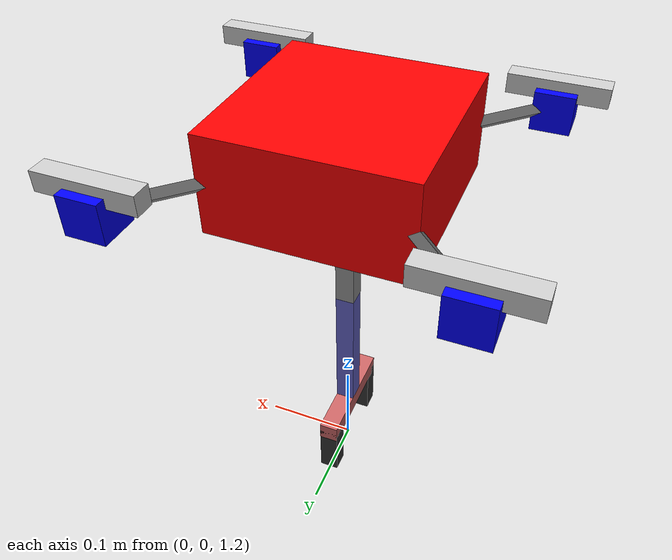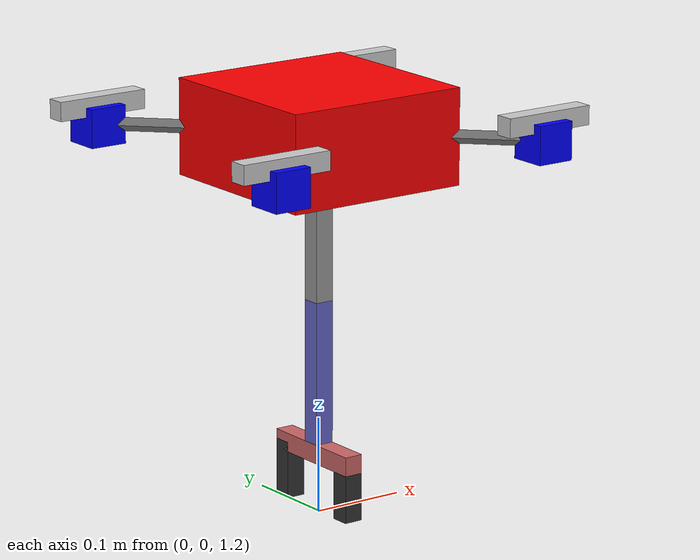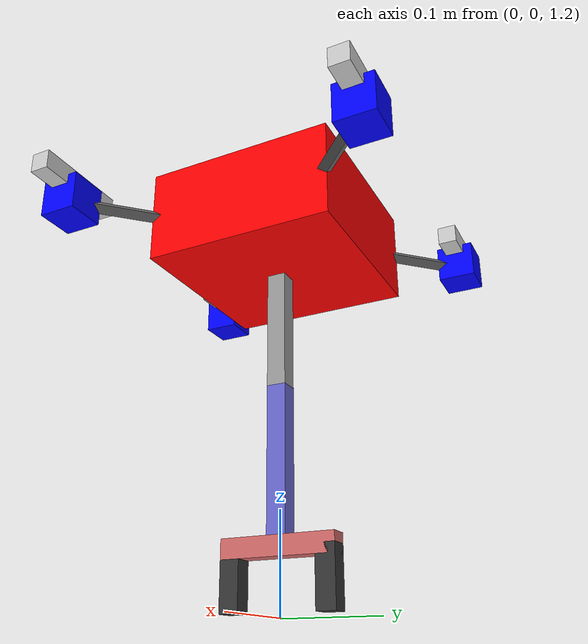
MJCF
<mujoco model="444">
<option integrator="implicit" timestep="0.005" gravity="0 0 -9.81"/>

  <default>
    <default class="444">
    </default>
  </default>

<worldbody>
  <body name="444" pos="0 0 1.6" childclass="444">
    <inertial pos="0 0 0" mass="2" diaginertia="0.01860 0.01860 0.03215"/>
    <freejoint/>
    <geom name="base" type="box" size="0.1 0.1 0.05" rgba="1 0 0 1"/>

    <!-- 无人机前视摄像头（前向固定） -->
  <camera name="front_cam"
          pos="0.05 0 -0.1"
          mode="fixed"
          resolution="640 480"
          sensorsize="0.006846 0.003853"
          focalpixel="615.3451538 615.4043579"
          orthographic="false"
          xyaxes="0 -1 0   0.5 0 0.866"/>

    <!-- X+ Y+ : 前左电机 -->
    <body name="arm_fl">
      <geom type="box" fromto="0 0 0 0.159 0.159 0" size="0.005" rgba="0.4 0.4 0.4 1"/>
      <body name="motor_fl" pos="0.159 0.159 0">
        <geom type="box" size="0.02 0.02 0.02" rgba="0 0 1 1"/>
        <body name="prop_fl">
          <joint name="rotor_fl" type="hinge" axis="0 0 -1" damping="0.2"/>
          <geom type="box" size="0.05 0.01 0.01" pos="0 0 0.02" rgba="0.8 0.8 0.8 1" contype="0" conaffinity="0"/>
        </body>
      </body>
    </body>

    <!-- X+ Y- : 前右电机 -->
    <body name="arm_fr">
      <geom type="box" fromto="0 0 0 0.159 -0.159 0" size="0.005" rgba="0.4 0.4 0.4 1"/>
      <body name="motor_fr" pos="0.159 -0.159 0">
        <geom type="box" size="0.02 0.02 0.02" rgba="0 0 1 1"/>
        <body name="prop_fr">
          <joint name="rotor_fr" type="hinge" axis="0 0 1" damping="0.2"/>
          <geom type="box" size="0.05 0.01 0.01" pos="0 0 0.02" rgba="0.8 0.8 0.8 1" contype="0" conaffinity="0"/>
        </body>
      </body>
    </body>

    <!-- X- Y+ : 后左电机 -->
    <body name="arm_bl">
      <geom type="box" fromto="0 0 0 -0.159 0.159 0" size="0.005" rgba="0.4 0.4 0.4 1"/>
      <body name="motor_bl" pos="-0.159 0.159 0">
        <geom type="box" size="0.02 0.02 0.02" rgba="0 0 1 1"/>
        <body name="prop_bl">
          <joint name="rotor_bl" type="hinge" axis="0 0 1" damping="0.2"/>
          <geom type="box" size="0.05 0.01 0.01" pos="0 0 0.02" rgba="0.8 0.8 0.8 1" contype="0" conaffinity="0"/>
        </body>
      </body>
    </body>

    <!-- X- Y- : 后右电机 -->
    <body name="arm_br">
      <geom type="box" fromto="0 0 0 -0.159 -0.159 0" size="0.005" rgba="0.4 0.4 0.4 1"/>
      <body name="motor_br" pos="-0.159 -0.159 0">
        <geom type="box" size="0.02 0.02 0.02" rgba="0 0 1 1"/>
        <body name="prop_br">
          <joint name="rotor_br" type="hinge" axis="0 0 -1" damping="0.2"/>
          <geom type="box" size="0.05 0.01 0.01" pos="0 0 0.02" rgba="0.8 0.8 0.8 1" contype="0" conaffinity="0"/>
        </body>
      </body>
    </body>
    <site name="imu" pos="0 0 0.0"/>
    <site name="motor1_site" pos="0.159 0.159 0.013"/>
    <site name="motor2_site" pos="0.159 -0.159 0.013"/>
    <site name="motor3_site" pos="-0.159 0.159 0.013"/>
    <site name="motor4_site" pos="-0.159 -0.159 0.013"/>

    <!-- ====== 二轴机械臂开始 ====== -->
    <body name="link1" pos="0 0 -0.1">
      <inertial pos="0 0 0" mass="0.15" diaginertia="0.0001431 0.0001431 0.0000050"/>
      <geom type="box" size="0.01 0.01 0.075" pos="0 0 0" rgba="0.6 0.6 0.6 1"/>
      <joint name="joint1" type="hinge" pos="0 0 0.075" axis="0 -1 0" damping="0.1"/>

      <body name="link2" pos="0 0 -0.15">
        <inertial pos="0 0 0" mass="0.15" diaginertia="0.0001431 0.0001431 0.0000050"/>
        <geom type="box" size="0.01 0.01 0.075" pos="0 0 0" rgba="0.4 0.4 0.8 1"/>
        <joint name="joint2" type="hinge" pos="0 0 0.075" axis="0 -1 0" damping="0.1"/>

        <!-- 机械臂末端摄像头（指向抓取方向），模拟 RealSense D435 参数 principalpixel="313.393707275391 251.593811035156"-->
        <camera name="gripper_cam"
                pos="0.05 0 0.05"
                xyaxes="0 -1 0 1 0 0"
                mode="fixed"
                resolution="640 480"
                sensorsize="0.006846 0.003853"
                focalpixel="615.345153808594 615.404357910156"
                orthographic="false"/>

        <body name="wrist" pos="0 0 -0.085">
            <inertial pos="0 0 0" mass="0.03" diaginertia="0.0000740 0.0000040 0.0000740"/>
            <geom type="box" size="0.01 0.06 0.01" pos="0 0 0" rgba="0.8 0.4 0.4 1"/>

          <joint name="joint3" type="hinge" pos="0 0 0" axis="0 0 1" damping="0.1"/>

          <body name="gripper_finger1" pos="0 0.05 -0.03">
            <inertial pos="0 0 0" mass="0.009875" diaginertia="0.0000033 0.0000033 0.0000013"/>
            <geom type="box" size="0.01 0.01 0.03" pos="0 0 0" rgba="0.2 0.2 0.2 1"
                   condim="4" solimp="2 1 0.01" solref="0.01 1" friction="1 0.005 0.0001"/>
            <joint name="finger1_joint" type="slide" pos="0 0 0" axis="0 -1 0" range="0 0.04" frictionloss="30"/>
          </body>

          <body name="gripper_finger2" pos="0 -0.05 -0.03">
            <inertial pos="0 0 0" mass="0.009875" diaginertia="0.0000033 0.0000033 0.0000013"/>
            <geom type="box" size="0.01 0.01 0.03" pos="0 0 0" rgba="0.2 0.2 0.2 1"
                   condim="4" solimp="2 1 0.01" solref="0.01 1" friction="1 0.005 0.0001"/>
            <joint name="finger2_joint" type="slide" pos="0 0 0" axis="0 1 0" range="0 0.04" frictionloss="30"/>
          </body>

        </body>
      </body>
    </body>
<!-- ====== 二轴机械臂结束 ====== -->
  </body>
</worldbody>

<equality>
  <joint joint1="finger1_joint" joint2="finger2_joint" solimp="0.95 0.99 0.001" solref="0.005 1"/>
</equality>

<tendon>
  <fixed name="gripper_tendon">
    <joint joint="finger1_joint" coef="0.5"/>
    <joint joint="finger2_joint" coef="0.5"/>
  </fixed>
</tendon>

<actuator>
  <velocity name="fr_motor" joint="rotor_fr" kv="1" gear="0.001" ctrlrange="0 1434.7 "/>
  <velocity name="fl_motor" joint="rotor_fl" kv="1" gear="0.001" ctrlrange="0 1434.7 "/>
  <velocity name="bl_motor" joint="rotor_bl" kv="1" gear="0.001" ctrlrange="0 1434.7 "/>
  <velocity name="br_motor" joint="rotor_br" kv="1" gear="0.001" ctrlrange="0 1434.7 "/>

  <motor class="444" ctrlrange="0 1" gear="0 0 12.5 0 0 -0.2175" site="motor1_site" name="motor1"/>
  <motor class="444" ctrlrange="0 1" gear="0 0 12.5 0 0 0.2175" site="motor2_site" name="motor2"/>
  <motor class="444" ctrlrange="0 1" gear="0 0 12.5 0 0 0.2175" site="motor3_site" name="motor3"/>
  <motor class="444" ctrlrange="0 1" gear="0 0 12.5 0 0 -0.2175" site="motor4_site" name="motor4"/>

    <!-- 添加机械臂关节位置伺服 -->
  <position name="act_joint1" joint="joint1" kp="100" kv="10" ctrlrange="-1.39626 1.39626"/>
  <position name="act_joint2" joint="joint2" kp="100" kv="10" ctrlrange="-2.61799 2.61799"/>
  <position name="act_joint3" joint="joint3" kp="100" kv="10" ctrlrange="-3.14159 3.14159"/>
  <general name="act_finger" tendon="gripper_tendon" forcerange="-100 100" ctrlrange="0 255"  dyntype="none" biastype="affine"
            gainprm="0.01568627451 0 0" biasprm="0 -100 -10" />
            <!-- biastype="affine" 这一设置非常关键，否则指头会滑动 -->
</actuator>

<sensor>
  <gyro name="imu_gyro" site="imu"/>
  <accelerometer name="body_linacc" site="imu"/>
  <framequat name="body_quat" objtype="site" objname="imu"/>
</sensor>

  <!--
    初始“hover”关键帧：
    - qpos 共 16 个标量（7 个自由度 + 9 个铰链/滑动关节）后7个为抓取物体
    - ctrl 共 12 个标量（对应 12 个 actuator）
  -->

</mujoco>
